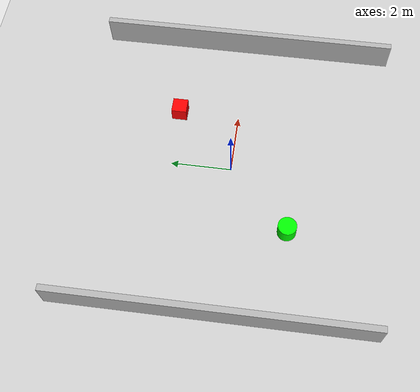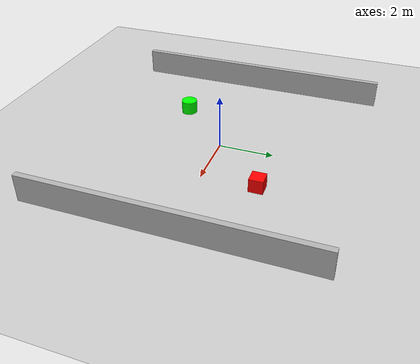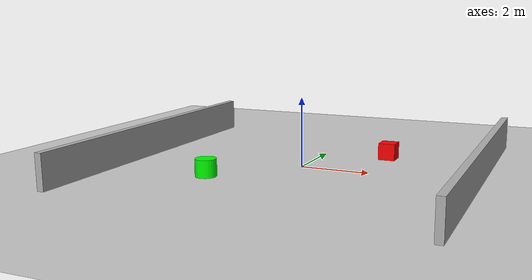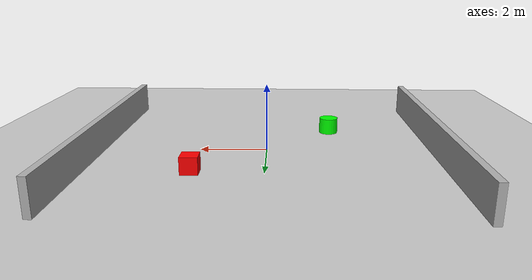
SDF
<?xml version='1.0' encoding='utf-8'?>
<sdf version="1.6">
  <world name="simple_world">

    <!-- Light -->
    <light type="directional" name="sun">
      <cast_shadows>true</cast_shadows>
      <pose>0 0 10 0 0 0</pose>
      <diffuse>0.8 0.8 0.8 1</diffuse>
      <specular>0.2 0.2 0.2 1</specular>
      <attenuation>
        <range>1000</range>
        <constant>0.9</constant>
        <linear>0.01</linear>
        <quadratic>0.001</quadratic>
      </attenuation>
      <direction>-0.5 0.1 -0.9</direction>
    </light>

    <!-- Ground Plane -->
    <model name="ground_plane">
      <static>true</static>
      <link name="link">
        <collision name="collision">
          <geometry>
            <plane>
              <normal>0 0 1</normal>
            </plane>
          </geometry>
        </collision>
        <visual name="visual">
          <geometry>
            <plane>
              <normal>0 0 1</normal>
              <size>100 100</size>
            </plane>
          </geometry>
          <material>
            <ambient>0.8 0.8 0.8 1</ambient>
            <diffuse>0.8 0.8 0.8 1</diffuse>
            <specular>0.8 0.8 0.8 1</specular>
          </material>
        </visual>
      </link>
    </model>

    <!-- Simple walls for testing -->
    <model name="wall_1">
      <static>true</static>
      <pose>5 0 0.5 0 0 0</pose>
      <link name="link">
        <collision name="collision">
          <geometry>
            <box>
              <size>0.2 10 1</size>
            </box>
          </geometry>
        </collision>
        <visual name="visual">
          <geometry>
            <box>
              <size>0.2 10 1</size>
            </box>
          </geometry>
          <material>
            <ambient>0.7 0.7 0.7 1</ambient>
            <diffuse>0.7 0.7 0.7 1</diffuse>
          </material>
        </visual>
      </link>
    </model>

    <model name="wall_2">
      <static>true</static>
      <pose>-5 0 0.5 0 0 0</pose>
      <link name="link">
        <collision name="collision">
          <geometry>
            <box>
              <size>0.2 10 1</size>
            </box>
          </geometry>
        </collision>
        <visual name="visual">
          <geometry>
            <box>
              <size>0.2 10 1</size>
            </box>
          </geometry>
          <material>
            <ambient>0.7 0.7 0.7 1</ambient>
            <diffuse>0.7 0.7 0.7 1</diffuse>
          </material>
        </visual>
      </link>
    </model>

    <!-- Some obstacles for LIDAR testing -->
    <model name="obstacle_1">
      <static>true</static>
      <pose>2 2 0.25 0 0 0</pose>
      <link name="link">
        <collision name="collision">
          <geometry>
            <box>
              <size>0.5 0.5 0.5</size>
            </box>
          </geometry>
        </collision>
        <visual name="visual">
          <geometry>
            <box>
              <size>0.5 0.5 0.5</size>
            </box>
          </geometry>
          <material>
            <ambient>1 0 0 1</ambient>
            <diffuse>1 0 0 1</diffuse>
          </material>
        </visual>
      </link>
    </model>

    <model name="obstacle_2">
      <static>true</static>
      <pose>-2 -2 0.25 0 0 0</pose>
      <link name="link">
        <collision name="collision">
          <geometry>
            <cylinder>
              <radius>0.3</radius>
              <length>0.5</length>
            </cylinder>
          </geometry>
        </collision>
        <visual name="visual">
          <geometry>
            <cylinder>
              <radius>0.3</radius>
              <length>0.5</length>
            </cylinder>
          </geometry>
          <material>
            <ambient>0 1 0 1</ambient>
            <diffuse>0 1 0 1</diffuse>
          </material>
        </visual>
      </link>
    </model>

    <!-- Camera settings -->
    <gui fullscreen='0'>
      <camera name='user_camera'>
        <pose>-3 -4 4 0 0.6 0.7</pose>
        <view_controller>orbit</view_controller>
        <projection_type>perspective</projection_type>
      </camera>
    </gui>
  </world>
</sdf>
